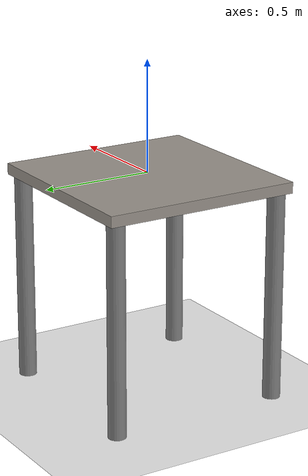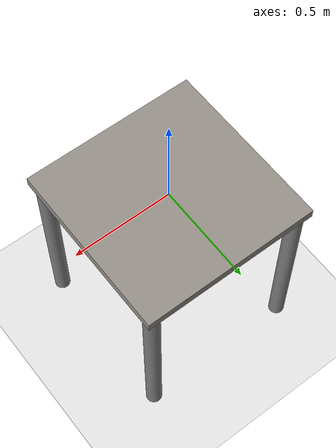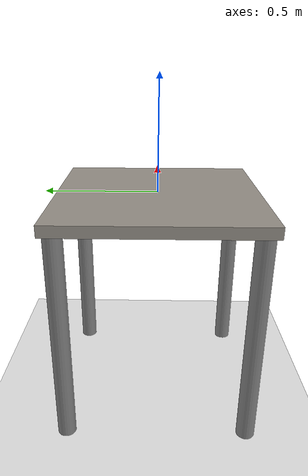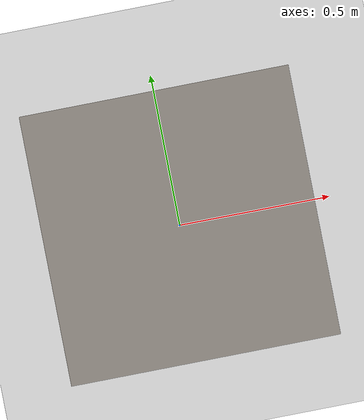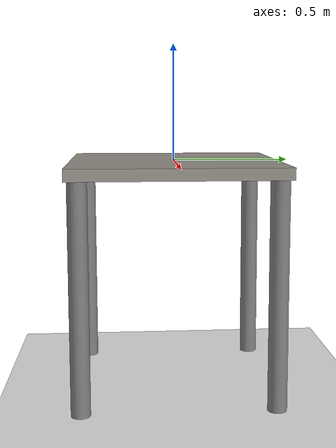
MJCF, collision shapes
<mujoco model='table-environment'>
    <include file='../common.xml'/>

    <option iterations="20" noslip_iterations="20" timestep="0.002"/>
    <size njmax="1000" nconmax="100" nstack="600000" />
    <visual>
        <global offwidth="3024" offheight="1680" />
        <quality shadowsize="4096" offsamples="8" />
        <map force="0.1" fogend="5" />
    </visual>

    <asset>
        <texture name="skybox" type="skybox" builtin="gradient" rgb1=".08 .09 .10" rgb2="0 0 0" width="800" height="800" mark="random" markrgb=".8 .8 .8"/>
        <texture name="texplane" type="2d" height="1" width="1" file="../textures/white_marble_tile2.png"/>
        <texture name="texbrick" type="2d" height="1" width="1" file="../textures/high_contrast_brick.png"/>
        <texture type="cube" name="granite" file="../textures/granite.png" />

        <material name="MatPlane" reflectance="0.01" texture="texplane" texrepeat="4 4" texuniform="true"/>
        <material name="MatBrick" reflectance="0" texture="texbrick" texrepeat="1 2" texuniform="false"/>
        <material name="granite" texture="granite" rgba="0.8 0.8 0.8 1" />

        <mesh file="../meshes/scene/wall.stl" scale="0.002 0.002 0.0002"/>
        <mesh file="../meshes/scene/skyline.stl" scale="2 2 1"/>
    </asset>

    <default>
        <default class='scene'>
            <geom contype="0" conaffinity="0"/>
        </default>
    </default>

    <!-- ======= WORLD ======= -->
    <worldbody>
        <!-- indoor lights -->
        <light directional="false" diffuse=".4 .4 .45" specular="0.3 0.3 0.6" pos="-6 -6 10" dir="0 0 -1"/>
        <light directional="false" diffuse=".4 .4 .45" specular="0.3 0.3 0.6" pos="6 -6 10" dir="0 0 -1"/>
        <light directional="false" diffuse=".6 .6 .6" specular="0.3 0.3 0.6" pos="0 0 10" dir="0 0 -1"/>

        <!-- floor and outside -->
        <geom class='scene' name="floor" pos="0 0 -1" size="10 10 .1" conaffinity="1" contype="1" type="plane" material="MatPlane" condim="3"/>
        <geom class='scene' name="skyline" mesh="skyline" pos="0 0 -6" type="mesh" rgba=".4 .4 .4 1" material="MatBrick"/>

        <!-- walls -->
        <geom class='scene' mesh="wall" pos="0 10 -1" type="mesh" material="MatBrick"/>
        <geom class='scene' mesh="wall" pos="0 -10 -1" type="mesh" material="MatBrick" euler="0 0 -3.14"/>
        <geom class='scene' mesh="wall" pos="10 0 -1" type="mesh" material="MatBrick" euler="0 0 -1.57"/>
        <geom class='scene' mesh="wall" pos="-10 0 -1" type="mesh" material="MatBrick" euler="0 0 1.57"/>

        <!-- front view -->
        <camera name="skew_side" pos="-0.6 0.7 0.8" quat="-0.33141357403559174 -0.1913417161825449 0.4619397662556433 0.8001031451912656" fovy="60"/>
        <camera name="paper" pos="-0.6 0.6 0.6" quat="-0.33141357403559174 -0.1913417161825449 0.4619397662556433 0.8001031451912656" fovy="20"/>

        <!-- Side view camera -->
        <camera name="side" pos="0.75 0 0.8" quat="0.6532814824381883 0.27059805007309845 0.2705980500730985 0.6532814824381882" fovy="50"/>

        <!-- Camera for the VIL paper -->
        <camera name="vil_camera" pos="0 -1.2 1.2" quat="0.92388 -0.382683 0 0" />

        <!-- ======= TABLE ======= -->
        <body name="table">
            <geom name="table_contact" size="0.45 0.45 0.025" pos="0 0 -0.025" type="box" material="granite" />
            <geom size="0.04 0.5" pos="0.4 0.4 -0.501" quat="0 1 0 0" type="cylinder" contype="0" conaffinity="0" />
            <geom size="0.04 0.5" pos="-0.4 0.4 -0.501" quat="0 1 0 0" type="cylinder" contype="0" conaffinity="0" />
            <geom size="0.04 0.5" pos="0.4 -0.4 -0.501" quat="0 1 0 0" type="cylinder" contype="0" conaffinity="0" />
            <geom size="0.04 0.5" pos="-0.4 -0.4 -0.501" quat="0 1 0 0" type="cylinder" contype="0" conaffinity="0" />
        </body>

    </worldbody>

</mujoco>

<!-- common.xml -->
<mujoco>
    <compiler angle="radian" />

    <asset>
        <material name="MatObject" specular="0.75" shininess="0.1" reflectance="0.5" rgba="0.9 0.7 0.5 1" />
    </asset>

    <default>
        <geom solref=".001 1"/>

        <joint limited="true" margin="0.01" armature="0.001" damping="0.05" frictionloss="0.001" />
        <geom friction="1 0.5 0.01" margin="0.0005" density="1250" />
        <site size="0.005 0 0" rgba="0.4 0.9 0.4 1" />
        <general ctrllimited="true" ctrlrange="-1 1" />
        <tendon limited="true" />

        <default class="object_visual">
            <geom type="mesh" contype="0" conaffinity="0" mass="0" group="1" material="MatObject" />
        </default>

        <default class="object_contact">
            <geom type="mesh" density="1250" condim="4" rgba="0 1 0 0" />
        </default>

        <default class="freejoint">
            <joint limited="false" damping="0"/>
        </default>
    </default>

    <visual>
        <!-- free camera attributes -->
        <global fovy="25" />
    </visual>
</mujoco>
